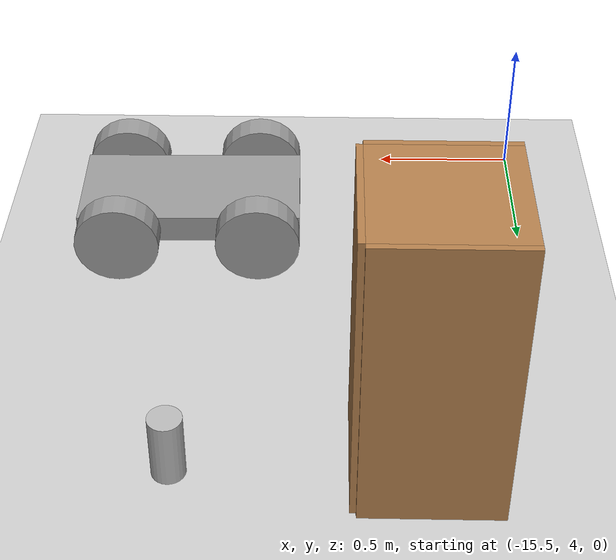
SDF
<sdf version="1.6">
 <world name="default">
  <model name="ground_plane">
   <static>1</static>
   <link name="link">
    <collision name="collision">
     <geometry><plane><normal>0 0 1</normal><size>100 100</size></plane></geometry>
     <surface>
      <contact><collide_bitmask>65535</collide_bitmask></contact>
      <friction><ode><mu>100</mu><mu2>50</mu2></ode></friction>
     </surface>
    </collision>
    <visual name="visual">
     <cast_shadows>0</cast_shadows>
     <geometry><plane><normal>0 0 1</normal><size>100 100</size></plane></geometry>
     <material>
      <script><uri>file://media/materials/scripts/gazebo.material</uri><name>Gazebo/Grey</name></script>
     </material>
    </visual>
   </link>
  </model>
  <model name="cabinet">
   <static>1</static>
   <link name="cabinet_bottom_plate">
    <inertial>
     <pose>0 0 -1 0 -0 0</pose>
     <inertia><ixx>2.05</ixx><ixy>0</ixy><ixz>0</ixz><iyy>2.05</iyy><iyz>0</iyz><izz>2.05</izz></inertia>
     <mass>25</mass>
    </inertial>
    <collision name="cabinet_bottom_plate_geom">
     <pose>0 0 0.01 0 -0 0</pose>
     <geometry><box><size>0.45 0.45 0.02</size></box></geometry>
    </collision>
    <visual name="cabinet_bottom_plate_geom_visual">
     <pose>0 0 0.01 0 -0 0</pose>
     <geometry><box><size>0.45 0.45 0.02</size></box></geometry>
     <material>
      <script><uri>file://media/materials/scripts/gazebo.material</uri><name>Gazebo/Wood</name></script>
     </material>
    </visual>
    <collision name="cabinet_bottom_plate_geom_cabinet_back_plate">
     <pose>0.235 0 0.51 0 -0 0</pose>
     <geometry><box><size>0.02 0.45 1.02</size></box></geometry>
    </collision>
    <visual name="cabinet_bottom_plate_geom_cabinet_back_plate_visual">
     <pose>0.235 0 0.51 0 -0 0</pose>
     <geometry><box><size>0.02 0.45 1.02</size></box></geometry>
     <material>
      <script><uri>file://media/materials/scripts/gazebo.material</uri><name>Gazebo/Wood</name></script>
     </material>
    </visual>
    <collision name="cabinet_bottom_plate_geom_cabinet_left_plate">
     <pose>0 0.235 0.51 0 -0 0</pose>
     <geometry><box><size>0.45 0.02 1.02</size></box></geometry>
    </collision>
    <visual name="cabinet_bottom_plate_geom_cabinet_left_plate_visual">
     <pose>0 0.235 0.51 0 -0 0</pose>
     <geometry><box><size>0.45 0.02 1.02</size></box></geometry>
     <material>
      <script><uri>file://media/materials/scripts/gazebo.material</uri><name>Gazebo/Wood</name></script>
     </material>
    </visual>
    <collision name="cabinet_bottom_plate_geom_cabinet_middle_plate">
     <pose>0 0 0.51 0 -0 0</pose>
     <geometry><box><size>0.45 0.45 0.02</size></box></geometry>
    </collision>
    <visual name="cabinet_bottom_plate_geom_cabinet_middle_plate_visual">
     <pose>0 0 0.51 0 -0 0</pose>
     <geometry><box><size>0.45 0.45 0.02</size></box></geometry>
     <material>
      <script><uri>file://media/materials/scripts/gazebo.material</uri><name>Gazebo/Wood</name></script>
     </material>
    </visual>
    <collision name="cabinet_bottom_plate_geom_cabinet_right_plate">
     <pose>0 -0.235 0.51 0 -0 0</pose>
     <geometry><box><size>0.45 0.02 1.02</size></box></geometry>
    </collision>
    <visual name="cabinet_bottom_plate_geom_cabinet_right_plate_visual">
     <pose>0 -0.235 0.51 0 -0 0</pose>
     <geometry><box><size>0.45 0.02 1.02</size></box></geometry>
     <material>
      <script><uri>file://media/materials/scripts/gazebo.material</uri><name>Gazebo/Wood</name></script>
     </material>
    </visual>
    <collision name="cabinet_bottom_plate_geom_cabinet_top_plate">
     <pose>0 0 1.01 0 -0 0</pose>
     <geometry><box><size>0.45 0.45 0.02</size></box></geometry>
    </collision>
    <visual name="cabinet_bottom_plate_geom_cabinet_top_plate_visual">
     <pose>0 0 1.01 0 -0 0</pose>
     <geometry><box><size>0.45 0.45 0.02</size></box></geometry>
     <material>
      <script><uri>file://media/materials/scripts/gazebo.material</uri><name>Gazebo/Wood</name></script>
     </material>
    </visual>
   </link>
   <pose>-15.105 5.6369 0 0 -0 0</pose>
  </model>
  <model name="beer">
   <link name="link">
    <pose>0 0 0.115 0 -0 0</pose>
    <inertial>
     <mass>0.39</mass>
     <inertia><ixx>0.00058</ixx><ixy>0</ixy><ixz>0</ixz><iyy>0.00058</iyy><iyz>0</iyz><izz>0.00019</izz></inertia>
    </inertial>
    <collision name="collision">
     <geometry><cylinder><radius>0.055</radius><length>0.23</length></cylinder></geometry>
    </collision>
    <visual name="visual">
     <geometry><cylinder><radius>0.055</radius><length>0.23</length></cylinder></geometry>
     <material>
      <script>
       <uri>model://beer/materials/scripts</uri>
       <uri>model://beer/materials/textures</uri>
       <name>Beer/Diffuse</name>
      </script>
     </material>
    </visual>
   </link>
   <pose>-14.3058 5.70633 -2e-06 1e-06 0 -2.2e-05</pose>
  </model>
  <model name="Car_clone">
   <link name="link_0">
    <inertial>
     <mass>1</mass>
     <inertia>
      <ixx>0.166667</ixx>
      <ixy>0</ixy>
      <ixz>0</ixz>
      <iyy>0.166667</iyy>
      <iyz>0</iyz>
      <izz>0.166667</izz>
     </inertia>
    </inertial>
    <visual name="visual">
     <geometry><box><size>0.8 0.4 0.1</size></box></geometry>
     <material>
      <lighting>1</lighting>
      <script><uri>file://media/materials/scripts/gazebo.material</uri><name>Gazebo/Grey</name></script>
      <shader type="pixel"><normal_map>__default__</normal_map></shader>
      <ambient>0.3 0.3 0.3 1</ambient>
      <diffuse>0.7 0.7 0.7 1</diffuse>
      <specular>0.01 0.01 0.01 1</specular>
      <emissive>0 0 0 1</emissive>
     </material>
    </visual>
    <collision name="collision">
     <geometry><box><size>0.8 0.4 0.05</size></box></geometry>
     <surface>
      <friction>
       <ode><mu>1</mu><mu2>1</mu2><fdir1>0 0 0</fdir1><slip1>0</slip1><slip2>0</slip2></ode>
       <torsional>
        <coefficient>1</coefficient>
        <patch_radius>0</patch_radius>
        <surface_radius>0</surface_radius>
        <use_patch_radius>1</use_patch_radius>
        <ode><slip>0</slip></ode>
       </torsional>
      </friction>
      <bounce><restitution_coefficient>0</restitution_coefficient><threshold>1e+06</threshold></bounce>
      <contact>
       <collide_without_contact>0</collide_without_contact>
       <collide_without_contact_bitmask>1</collide_without_contact_bitmask>
       <collide_bitmask>1</collide_bitmask>
       <ode>
        <soft_cfm>0</soft_cfm>
        <soft_erp>0.2</soft_erp>
        <kp>1e+13</kp>
        <kd>1</kd>
        <max_vel>0.01</max_vel>
        <min_depth>0</min_depth>
       </ode>
       <bullet>
        <split_impulse>1</split_impulse>
        <split_impulse_penetration_threshold>-0.01</split_impulse_penetration_threshold>
        <soft_cfm>0</soft_cfm>
        <soft_erp>0.2</soft_erp>
        <kp>1e+13</kp>
        <kd>1</kd>
       </bullet>
      </contact>
     </surface>
    </collision>
   </link>
   <link name="link_1">
    <pose>-0.25 -0.250014 0 1.5707 -0 0</pose>
    <inertial>
     <mass>1</mass>
     <inertia><ixx>0.145833</ixx><ixy>0</ixy><ixz>0</ixz><iyy>0.145833</iyy><iyz>0</iyz><izz>0.125</izz></inertia>
    </inertial>
    <visual name="visual">
     <geometry><cylinder><radius>0.15</radius><length>0.1</length></cylinder></geometry>
     <material>
      <lighting>1</lighting>
      <script><uri>file://media/materials/scripts/gazebo.material</uri><name>Gazebo/Grey</name></script>
      <shader type="pixel"><normal_map>__default__</normal_map></shader>
      <ambient>0.3 0.3 0.3 1</ambient>
      <diffuse>0.7 0.7 0.7 1</diffuse>
      <specular>0.01 0.01 0.01 1</specular>
      <emissive>0 0 0 1</emissive>
     </material>
    </visual>
    <collision name="collision">
     <geometry><cylinder><radius>0.15</radius><length>0.1</length></cylinder></geometry>
     <surface>
      <friction>
       <ode><mu>1</mu><mu2>1</mu2><fdir1>0 0 0</fdir1><slip1>0</slip1><slip2>0</slip2></ode>
       <torsional>
        <coefficient>1</coefficient>
        <patch_radius>0</patch_radius>
        <surface_radius>0</surface_radius>
        <use_patch_radius>1</use_patch_radius>
        <ode><slip>0</slip></ode>
       </torsional>
      </friction>
      <bounce><restitution_coefficient>0</restitution_coefficient><threshold>1e+06</threshold></bounce>
      <contact>
       <collide_without_contact>0</collide_without_contact>
       <collide_without_contact_bitmask>1</collide_without_contact_bitmask>
       <collide_bitmask>1</collide_bitmask>
       <ode>
        <soft_cfm>0</soft_cfm>
        <soft_erp>0.2</soft_erp>
        <kp>1e+13</kp>
        <kd>1</kd>
        <max_vel>0.01</max_vel>
        <min_depth>0</min_depth>
       </ode>
       <bullet>
        <split_impulse>1</split_impulse>
        <split_impulse_penetration_threshold>-0.01</split_impulse_penetration_threshold>
        <soft_cfm>0</soft_cfm>
        <soft_erp>0.2</soft_erp>
        <kp>1e+13</kp>
        <kd>1</kd>
       </bullet>
      </contact>
     </surface>
    </collision>
   </link>
   <link name="link_1_clone">
    <pose>-0.25 0.250014 0 1.5707 -0 0</pose>
    <inertial>
     <mass>1</mass>
     <inertia><ixx>0.145833</ixx><ixy>0</ixy><ixz>0</ixz><iyy>0.145833</iyy><iyz>0</iyz><izz>0.125</izz></inertia>
    </inertial>
    <visual name="visual">
     <geometry><cylinder><radius>0.15</radius><length>0.1</length></cylinder></geometry>
     <material>
      <lighting>1</lighting>
      <script><uri>file://media/materials/scripts/gazebo.material</uri><name>Gazebo/Grey</name></script>
      <shader type="pixel"><normal_map>__default__</normal_map></shader>
      <ambient>0.3 0.3 0.3 1</ambient>
      <diffuse>0.7 0.7 0.7 1</diffuse>
      <specular>0.01 0.01 0.01 1</specular>
      <emissive>0 0 0 1</emissive>
     </material>
    </visual>
    <collision name="collision">
     <geometry><cylinder><radius>0.15</radius><length>0.1</length></cylinder></geometry>
     <surface>
      <friction>
       <ode><mu>1</mu><mu2>1</mu2><fdir1>0 0 0</fdir1><slip1>0</slip1><slip2>0</slip2></ode>
       <torsional>
        <coefficient>1</coefficient>
        <patch_radius>0</patch_radius>
        <surface_radius>0</surface_radius>
        <use_patch_radius>1</use_patch_radius>
        <ode><slip>0</slip></ode>
       </torsional>
      </friction>
      <bounce><restitution_coefficient>0</restitution_coefficient><threshold>1e+06</threshold></bounce>
      <contact>
       <collide_without_contact>0</collide_without_contact>
       <collide_without_contact_bitmask>1</collide_without_contact_bitmask>
       <collide_bitmask>1</collide_bitmask>
       <ode>
        <soft_cfm>0</soft_cfm>
        <soft_erp>0.2</soft_erp>
        <kp>1e+13</kp>
        <kd>1</kd>
        <max_vel>0.01</max_vel>
        <min_depth>0</min_depth>
       </ode>
       <bullet>
        <split_impulse>1</split_impulse>
        <split_impulse_penetration_threshold>-0.01</split_impulse_penetration_threshold>
        <soft_cfm>0</soft_cfm>
        <soft_erp>0.2</soft_erp>
        <kp>1e+13</kp>
        <kd>1</kd>
       </bullet>
      </contact>
     </surface>
    </collision>
   </link>
   <link name="link_1_clone_clone">
    <pose>0.25 -0.250014 0 1.5707 -0 0</pose>
    <inertial>
     <mass>1</mass>
     <inertia><ixx>0.145833</ixx><ixy>0</ixy><ixz>0</ixz><iyy>0.145833</iyy><iyz>0</iyz><izz>0.125</izz></inertia>
    </inertial>
    <visual name="visual">
     <geometry><cylinder><radius>0.15</radius><length>0.1</length></cylinder></geometry>
     <material>
      <lighting>1</lighting>
      <script><uri>file://media/materials/scripts/gazebo.material</uri><name>Gazebo/Grey</name></script>
      <shader type="pixel"><normal_map>__default__</normal_map></shader>
      <ambient>0.3 0.3 0.3 1</ambient>
      <diffuse>0.7 0.7 0.7 1</diffuse>
      <specular>0.01 0.01 0.01 1</specular>
      <emissive>0 0 0 1</emissive>
     </material>
    </visual>
    <collision name="collision">
     <geometry><cylinder><radius>0.15</radius><length>0.1</length></cylinder></geometry>
     <surface>
      <friction>
       <ode><mu>1</mu><mu2>1</mu2><fdir1>0 0 0</fdir1><slip1>0</slip1><slip2>0</slip2></ode>
       <torsional>
        <coefficient>1</coefficient>
        <patch_radius>0</patch_radius>
        <surface_radius>0</surface_radius>
        <use_patch_radius>1</use_patch_radius>
        <ode><slip>0</slip></ode>
       </torsional>
      </friction>
      <bounce><restitution_coefficient>0</restitution_coefficient><threshold>1e+06</threshold></bounce>
      <contact>
       <collide_without_contact>0</collide_without_contact>
       <collide_without_contact_bitmask>1</collide_without_contact_bitmask>
       <collide_bitmask>1</collide_bitmask>
       <ode>
        <soft_cfm>0</soft_cfm>
        <soft_erp>0.2</soft_erp>
        <kp>1e+13</kp>
        <kd>1</kd>
        <max_vel>0.01</max_vel>
        <min_depth>0</min_depth>
       </ode>
       <bullet>
        <split_impulse>1</split_impulse>
        <split_impulse_penetration_threshold>-0.01</split_impulse_penetration_threshold>
        <soft_cfm>0</soft_cfm>
        <soft_erp>0.2</soft_erp>
        <kp>1e+13</kp>
        <kd>1</kd>
       </bullet>
      </contact>
     </surface>
    </collision>
   </link>
   <link name="link_1_clone_clone_0">
    <pose>0.25 0.250014 0 1.5707 -0 0</pose>
    <inertial>
     <mass>1</mass>
     <inertia><ixx>0.145833</ixx><ixy>0</ixy><ixz>0</ixz><iyy>0.145833</iyy><iyz>0</iyz><izz>0.125</izz></inertia>
    </inertial>
    <visual name="visual">
     <geometry><cylinder><radius>0.15</radius><length>0.1</length></cylinder></geometry>
     <material>
      <lighting>1</lighting>
      <script><uri>file://media/materials/scripts/gazebo.material</uri><name>Gazebo/Grey</name></script>
      <shader type="pixel"><normal_map>__default__</normal_map></shader>
      <ambient>0.3 0.3 0.3 1</ambient>
      <diffuse>0.7 0.7 0.7 1</diffuse>
      <specular>0.01 0.01 0.01 1</specular>
      <emissive>0 0 0 1</emissive>
     </material>
    </visual>
    <collision name="collision">
     <geometry><cylinder><radius>0.15</radius><length>0.1</length></cylinder></geometry>
     <surface>
      <friction>
       <ode><mu>1</mu><mu2>1</mu2><fdir1>0 0 0</fdir1><slip1>0</slip1><slip2>0</slip2></ode>
       <torsional>
        <coefficient>1</coefficient>
        <patch_radius>0</patch_radius>
        <surface_radius>0</surface_radius>
        <use_patch_radius>1</use_patch_radius>
        <ode><slip>0</slip></ode>
       </torsional>
      </friction>
      <bounce><restitution_coefficient>0</restitution_coefficient><threshold>1e+06</threshold></bounce>
      <contact>
       <collide_without_contact>0</collide_without_contact>
       <collide_without_contact_bitmask>1</collide_without_contact_bitmask>
       <collide_bitmask>1</collide_bitmask>
       <ode>
        <soft_cfm>0</soft_cfm>
        <soft_erp>0.2</soft_erp>
        <kp>1e+13</kp>
        <kd>1</kd>
        <max_vel>0.01</max_vel>
        <min_depth>0</min_depth>
       </ode>
       <bullet>
        <split_impulse>1</split_impulse>
        <split_impulse_penetration_threshold>-0.01</split_impulse_penetration_threshold>
        <soft_cfm>0</soft_cfm>
        <soft_erp>0.2</soft_erp>
        <kp>1e+13</kp>
        <kd>1</kd>
       </bullet>
      </contact>
     </surface>
    </collision>
   </link>
   <joint name="link_0_JOINT_1" type="revolute">
    <parent>link_0</parent>
    <child>link_1</child>
    <axis>
     <xyz>0 0 1</xyz>
     <use_parent_model_frame>0</use_parent_model_frame>
     <limit>
      <lower>-1.79769e+308</lower>
      <upper>1.79769e+308</upper>
      <effort>-1</effort>
      <velocity>-1</velocity>
     </limit>
     <dynamics>
      <spring_reference>0</spring_reference>
      <spring_stiffness>0</spring_stiffness>
      <damping>0</damping>
     </dynamics>
    </axis>
    <physics>
     <ode><limit><cfm>0</cfm><erp>0.2</erp></limit><suspension><cfm>0</cfm><erp>0.2</erp></suspension></ode>
    </physics>
   </joint>
   <joint name="link_0_JOINT_2" type="revolute">
    <parent>link_0</parent>
    <child>link_1_clone</child>
    <axis>
     <xyz>0 0 1</xyz>
     <use_parent_model_frame>0</use_parent_model_frame>
     <limit>
      <lower>-1.79769e+308</lower>
      <upper>1.79769e+308</upper>
      <effort>-1</effort>
      <velocity>-1</velocity>
     </limit>
     <dynamics>
      <spring_reference>0</spring_reference>
      <spring_stiffness>0</spring_stiffness>
      <damping>0</damping>
     </dynamics>
    </axis>
    <physics>
     <ode><limit><cfm>0</cfm><erp>0.2</erp></limit><suspension><cfm>0</cfm><erp>0.2</erp></suspension></ode>
    </physics>
   </joint>
   <joint name="link_0_JOINT_3" type="revolute">
    <parent>link_0</parent>
    <child>link_1_clone_clone</child>
    <axis>
     <xyz>0 0 1</xyz>
     <use_parent_model_frame>0</use_parent_model_frame>
     <limit>
      <lower>-1.79769e+308</lower>
      <upper>1.79769e+308</upper>
      <effort>-1</effort>
      <velocity>-1</velocity>
     </limit>
     <dynamics>
      <spring_reference>0</spring_reference>
      <spring_stiffness>0</spring_stiffness>
      <damping>0</damping>
     </dynamics>
    </axis>
    <physics>
     <ode><limit><cfm>0</cfm><erp>0.2</erp></limit><suspension><cfm>0</cfm><erp>0.2</erp></suspension></ode>
    </physics>
   </joint>
   <joint name="link_0_JOINT_4" type="revolute">
    <parent>link_0</parent>
    <child>link_1_clone_clone_0</child>
    <axis>
     <xyz>0 0 1</xyz>
     <use_parent_model_frame>0</use_parent_model_frame>
     <limit>
      <lower>-1.79769e+308</lower>
      <upper>1.79769e+308</upper>
      <effort>-1</effort>
      <velocity>-1</velocity>
     </limit>
     <dynamics>
      <spring_reference>0</spring_reference>
      <spring_stiffness>0</spring_stiffness>
      <damping>0</damping>
     </dynamics>
    </axis>
    <physics>
     <ode><limit><cfm>0</cfm><erp>0.2</erp></limit><suspension><cfm>0</cfm><erp>0.2</erp></suspension></ode>
    </physics>
   </joint>
   <static>0</static>
   <pose>-14.2826 4.4777 0.150005 -1e-06 -1e-06 0.017549</pose>
  </model>
 </world>
</sdf>
